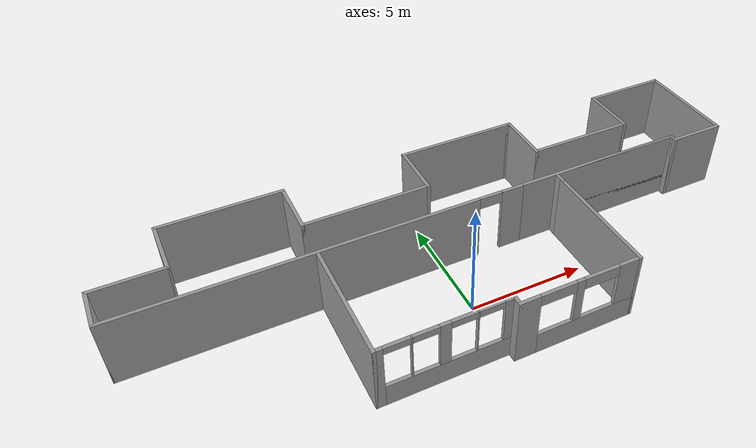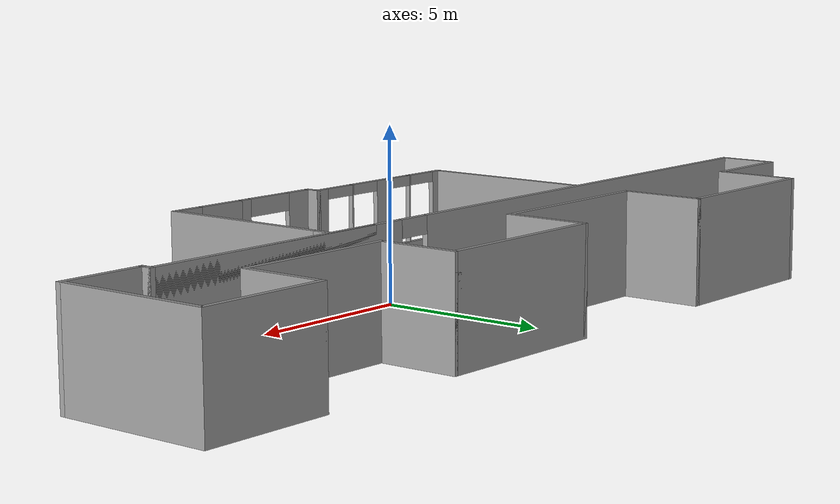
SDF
<?xml version='1.0'?>
<sdf version='1.6'>
  <model name='2ndfloor'>
    <pose frame=''>0.281 1.922 0 0 -0 0</pose>
    <link name='Wall_1'>
      <collision name='Wall_1_Collision'>
        <geometry>
          <box>
            <size>4.75 0.15 3</size>
          </box>
        </geometry>
        <pose frame=''>0 0 1.5 0 -0 0</pose>
      </collision>
      <visual name='Wall_1_Visual'>
        <pose frame=''>0 0 1.5 0 -0 0</pose>
        <geometry>
          <box>
            <size>4.75 0.15 3</size>
          </box>
        </geometry>
        <material>
          <script>
            <uri>file://media/materials/scripts/gazebo.material</uri>
            <name>Gazebo/Grey</name>
          </script>
          <ambient>1 1 1 1</ambient>
        </material>
        <meta>
          <layer>0</layer>
        </meta>
      </visual>
      <pose frame=''>7.45 2.472 0 0 -0 0</pose>
    </link>
    <link name='Wall_10'>
      <collision name='Wall_10_Collision'>
        <geometry>
          <box>
            <size>2.5 0.15 3</size>
          </box>
        </geometry>
        <pose frame=''>0 0 1.5 0 -0 0</pose>
      </collision>
      <visual name='Wall_10_Visual'>
        <pose frame=''>0 0 1.5 0 -0 0</pose>
        <geometry>
          <box>
            <size>2.5 0.15 3</size>
          </box>
        </geometry>
        <material>
          <script>
            <uri>file://media/materials/scripts/gazebo.material</uri>
            <name>Gazebo/Grey</name>
          </script>
          <ambient>1 1 1 1</ambient>
        </material>
        <meta>
          <layer>0</layer>
        </meta>
      </visual>
      <pose frame=''>-10.5 3.597 0 0 -0 1.5708</pose>
    </link>
    <link name='Wall_11'>
      <collision name='Wall_11_Collision'>
        <geometry>
          <box>
            <size>5.25 0.15 3</size>
          </box>
        </geometry>
        <pose frame=''>0 0 1.5 0 -0 0</pose>
      </collision>
      <visual name='Wall_11_Visual'>
        <pose frame=''>0 0 1.5 0 -0 0</pose>
        <geometry>
          <box>
            <size>5.25 0.15 3</size>
          </box>
        </geometry>
        <material>
          <script>
            <uri>file://media/materials/scripts/gazebo.material</uri>
            <name>Gazebo/Grey</name>
          </script>
          <ambient>1 1 1 1</ambient>
        </material>
        <meta>
          <layer>0</layer>
        </meta>
      </visual>
      <pose frame=''>-7.95 4.772 0 0 -0 0</pose>
    </link>
    <link name='Wall_12'>
      <collision name='Wall_12_Collision'>
        <geometry>
          <box>
            <size>2.5 0.15 3</size>
          </box>
        </geometry>
        <pose frame=''>0 0 1.5 0 -0 0</pose>
      </collision>
      <visual name='Wall_12_Visual'>
        <pose frame=''>0 0 1.5 0 -0 0</pose>
        <geometry>
          <box>
            <size>2.5 0.15 3</size>
          </box>
        </geometry>
        <material>
          <script>
            <uri>file://media/materials/scripts/gazebo.material</uri>
            <name>Gazebo/Grey</name>
          </script>
          <ambient>1 1 1 1</ambient>
        </material>
        <meta>
          <layer>0</layer>
        </meta>
      </visual>
      <pose frame=''>-5.4 3.597 0 0 -0 -1.5708</pose>
    </link>
    <link name='Wall_13'>
      <collision name='Wall_13_Collision'>
        <geometry>
          <box>
            <size>5.5 0.15 3</size>
          </box>
        </geometry>
        <pose frame=''>0 0 1.5 0 -0 0</pose>
      </collision>
      <visual name='Wall_13_Visual'>
        <pose frame=''>0 0 1.5 0 -0 0</pose>
        <geometry>
          <box>
            <size>5.5 0.15 3</size>
          </box>
        </geometry>
        <material>
          <script>
            <uri>file://media/materials/scripts/gazebo.material</uri>
            <name>Gazebo/Grey</name>
          </script>
          <ambient>1 1 1 1</ambient>
        </material>
        <meta>
          <layer>0</layer>
        </meta>
      </visual>
      <pose frame=''>-2.725 2.422 0 0 -0 0</pose>
    </link>
    <link name='Wall_14'>
      <collision name='Wall_14_Collision'>
        <geometry>
          <box>
            <size>2.5 0.15 3</size>
          </box>
        </geometry>
        <pose frame=''>0 0 1.5 0 -0 0</pose>
      </collision>
      <visual name='Wall_14_Visual'>
        <pose frame=''>0 0 1.5 0 -0 0</pose>
        <geometry>
          <box>
            <size>2.5 0.15 3</size>
          </box>
        </geometry>
        <material>
          <script>
            <uri>file://media/materials/scripts/gazebo.material</uri>
            <name>Gazebo/Grey</name>
          </script>
          <ambient>1 1 1 1</ambient>
        </material>
        <meta>
          <layer>0</layer>
        </meta>
      </visual>
      <pose frame=''>-0.05 3.597 0 0 -0 1.5708</pose>
    </link>
    <link name='Wall_15'>
      <collision name='Wall_15_Collision'>
        <geometry>
          <box>
            <size>5.25 0.15 3</size>
          </box>
        </geometry>
        <pose frame=''>0 0 1.5 0 -0 0</pose>
      </collision>
      <visual name='Wall_15_Visual'>
        <pose frame=''>0 0 1.5 0 -0 0</pose>
        <geometry>
          <box>
            <size>5.25 0.15 3</size>
          </box>
        </geometry>
        <material>
          <script>
            <uri>file://media/materials/scripts/gazebo.material</uri>
            <name>Gazebo/Grey</name>
          </script>
          <ambient>1 1 1 1</ambient>
        </material>
        <meta>
          <layer>0</layer>
        </meta>
      </visual>
      <pose frame=''>2.5 4.772 0 0 -0 0</pose>
    </link>
    <link name='Wall_16'>
      <collision name='Wall_16_Collision'>
        <geometry>
          <box>
            <size>0.25 0.15 2.5</size>
          </box>
        </geometry>
        <pose frame=''>0 0 1.25 0 -0 0</pose>
      </collision>
      <visual name='Wall_16_Visual'>
        <pose frame=''>0 0 1.25 0 -0 0</pose>
        <geometry>
          <box>
            <size>0.25 0.15 2.5</size>
          </box>
        </geometry>
        <material>
          <script>
            <uri>file://media/materials/scripts/gazebo.material</uri>
            <name>Gazebo/Grey</name>
          </script>
          <ambient>1 1 1 1</ambient>
        </material>
        <meta>
          <layer>0</layer>
        </meta>
      </visual>
      <pose frame=''>5.1 4.772 0 0 -0 0</pose>
    </link>
    <link name='Wall_17'>
      <collision name='Wall_17_Collision'>
        <geometry>
          <box>
            <size>2.45 0.15 3</size>
          </box>
        </geometry>
        <pose frame=''>0 0 1.5 0 -0 0</pose>
      </collision>
      <visual name='Wall_17_Visual'>
        <pose frame=''>0 0 1.5 0 -0 0</pose>
        <geometry>
          <box>
            <size>2.45 0.15 3</size>
          </box>
        </geometry>
        <material>
          <script>
            <uri>file://media/materials/scripts/gazebo.material</uri>
            <name>Gazebo/Grey</name>
          </script>
          <ambient>1 1 1 1</ambient>
        </material>
        <meta>
          <layer>0</layer>
        </meta>
      </visual>
      <pose frame=''>5.15 3.622 0 0 -0 -1.5708</pose>
    </link>
    <link name='Wall_2'>
      <collision name='Wall_2_Collision'>
        <geometry>
          <box>
            <size>2.5 0.15 3</size>
          </box>
        </geometry>
        <pose frame=''>0 0 1.5 0 -0 0</pose>
      </collision>
      <visual name='Wall_2_Visual'>
        <pose frame=''>0 0 1.5 0 -0 0</pose>
        <geometry>
          <box>
            <size>2.5 0.15 3</size>
          </box>
        </geometry>
        <material>
          <script>
            <uri>file://media/materials/scripts/gazebo.material</uri>
            <name>Gazebo/Grey</name>
          </script>
          <ambient>1 1 1 1</ambient>
        </material>
        <meta>
          <layer>0</layer>
        </meta>
      </visual>
      <pose frame=''>9.75 3.647 0 0 -0 1.5708</pose>
    </link>
    <link name='Wall_22'>
      <pose frame=''>-2.7415 -4.472 0 0 -0 0</pose>
      <visual name='Wall_22_Visual_0'>
        <pose frame=''>-2.54474 0 1.5 0 -0 0</pose>
        <geometry>
          <box>
            <size>0.397366 0.15 3</size>
          </box>
        </geometry>
        <material>
          <script>
            <uri>file://media/materials/scripts/gazebo.material</uri>
            <name>Gazebo/Grey</name>
          </script>
          <ambient>1 1 1 1</ambient>
        </material>
        <meta>
          <layer>0</layer>
        </meta>
      </visual>
      <collision name='Wall_22_Collision_0'>
        <geometry>
          <box>
            <size>0.397366 0.15 3</size>
          </box>
        </geometry>
        <pose frame=''>-2.54474 0 1.5 0 -0 0</pose>
      </collision>
      <visual name='Wall_22_Visual_1'>
        <pose frame=''>0.198683 0 0.5 0 -0 0</pose>
        <geometry>
          <box>
            <size>5.08948 0.15 1</size>
          </box>
        </geometry>
        <material>
          <script>
            <uri>file://media/materials/scripts/gazebo.material</uri>
            <name>Gazebo/Grey</name>
          </script>
          <ambient>1 1 1 1</ambient>
        </material>
        <meta>
          <layer>0</layer>
        </meta>
      </visual>
      <collision name='Wall_22_Collision_1'>
        <geometry>
          <box>
            <size>5.08948 0.15 1</size>
          </box>
        </geometry>
        <pose frame=''>0.198683 0 0.5 0 -0 0</pose>
      </collision>
      <visual name='Wall_22_Visual_2'>
        <pose frame=''>-1.2997 0 2 0 -0 0</pose>
        <geometry>
          <box>
            <size>0.052724 0.15 2</size>
          </box>
        </geometry>
        <material>
          <script>
            <uri>file://media/materials/scripts/gazebo.material</uri>
            <name>Gazebo/Grey</name>
          </script>
          <ambient>1 1 1 1</ambient>
        </material>
        <meta>
          <layer>0</layer>
        </meta>
      </visual>
      <collision name='Wall_22_Collision_2'>
        <geometry>
          <box>
            <size>0.052724 0.15 2</size>
          </box>
        </geometry>
        <pose frame=''>-1.2997 0 2 0 -0 0</pose>
      </collision>
      <visual name='Wall_22_Visual_3'>
        <pose frame=''>-0.037497 0 2 0 -0 0</pose>
        <geometry>
          <box>
            <size>0.431675 0.15 2</size>
          </box>
        </geometry>
        <material>
          <script>
            <uri>file://media/materials/scripts/gazebo.material</uri>
            <name>Gazebo/Grey</name>
          </script>
          <ambient>1 1 1 1</ambient>
        </material>
        <meta>
          <layer>0</layer>
        </meta>
      </visual>
      <collision name='Wall_22_Collision_3'>
        <geometry>
          <box>
            <size>0.431675 0.15 2</size>
          </box>
        </geometry>
        <pose frame=''>-0.037497 0 2 0 -0 0</pose>
      </collision>
      <visual name='Wall_22_Visual_4'>
        <pose frame=''>1.22519 0 2 0 -0 0</pose>
        <geometry>
          <box>
            <size>0.053703 0.15 2</size>
          </box>
        </geometry>
        <material>
          <script>
            <uri>file://media/materials/scripts/gazebo.material</uri>
            <name>Gazebo/Grey</name>
          </script>
          <ambient>1 1 1 1</ambient>
        </material>
        <meta>
          <layer>0</layer>
        </meta>
      </visual>
      <collision name='Wall_22_Collision_4'>
        <geometry>
          <box>
            <size>0.053703 0.15 2</size>
          </box>
        </geometry>
        <pose frame=''>1.22519 0 2 0 -0 0</pose>
      </collision>
      <visual name='Wall_22_Visual_5'>
        <pose frame=''>2.50773 0 2 0 -0 0</pose>
        <geometry>
          <box>
            <size>0.471381 0.15 2</size>
          </box>
        </geometry>
        <material>
          <script>
            <uri>file://media/materials/scripts/gazebo.material</uri>
            <name>Gazebo/Grey</name>
          </script>
          <ambient>1 1 1 1</ambient>
        </material>
        <meta>
          <layer>0</layer>
        </meta>
      </visual>
      <collision name='Wall_22_Collision_5'>
        <geometry>
          <box>
            <size>0.471381 0.15 2</size>
          </box>
        </geometry>
        <pose frame=''>2.50773 0 2 0 -0 0</pose>
      </collision>
      <visual name='Wall_22_Visual_6'>
        <pose frame=''>-1.83606 0 2.85 0 -0 0</pose>
        <geometry>
          <box>
            <size>1.02 0.15 0.3</size>
          </box>
        </geometry>
        <material>
          <script>
            <uri>file://media/materials/scripts/gazebo.material</uri>
            <name>Gazebo/Grey</name>
          </script>
          <ambient>1 1 1 1</ambient>
        </material>
        <meta>
          <layer>0</layer>
        </meta>
      </visual>
      <collision name='Wall_22_Collision_6'>
        <geometry>
          <box>
            <size>1.02 0.15 0.3</size>
          </box>
        </geometry>
        <pose frame=''>-1.83606 0 2.85 0 -0 0</pose>
      </collision>
      <visual name='Wall_22_Visual_7'>
        <pose frame=''>-0.763334 0 2.85 0 -0 0</pose>
        <geometry>
          <box>
            <size>1.02 0.15 0.3</size>
          </box>
        </geometry>
        <material>
          <script>
            <uri>file://media/materials/scripts/gazebo.material</uri>
            <name>Gazebo/Grey</name>
          </script>
          <ambient>1 1 1 1</ambient>
        </material>
        <meta>
          <layer>0</layer>
        </meta>
      </visual>
      <collision name='Wall_22_Collision_7'>
        <geometry>
          <box>
            <size>1.02 0.15 0.3</size>
          </box>
        </geometry>
        <pose frame=''>-0.763334 0 2.85 0 -0 0</pose>
      </collision>
      <visual name='Wall_22_Visual_8'>
        <pose frame=''>0.688341 0 2.85 0 -0 0</pose>
        <geometry>
          <box>
            <size>1.02 0.15 0.3</size>
          </box>
        </geometry>
        <material>
          <script>
            <uri>file://media/materials/scripts/gazebo.material</uri>
            <name>Gazebo/Grey</name>
          </script>
          <ambient>1 1 1 1</ambient>
        </material>
        <meta>
          <layer>0</layer>
        </meta>
      </visual>
      <collision name='Wall_22_Collision_8'>
        <geometry>
          <box>
            <size>1.02 0.15 0.3</size>
          </box>
        </geometry>
        <pose frame=''>0.688341 0 2.85 0 -0 0</pose>
      </collision>
      <visual name='Wall_22_Visual_9'>
        <pose frame=''>1.76204 0 2.85 0 -0 0</pose>
        <geometry>
          <box>
            <size>1.02 0.15 0.3</size>
          </box>
        </geometry>
        <material>
          <script>
            <uri>file://media/materials/scripts/gazebo.material</uri>
            <name>Gazebo/Grey</name>
          </script>
          <ambient>1 1 1 1</ambient>
        </material>
        <meta>
          <layer>0</layer>
        </meta>
      </visual>
      <collision name='Wall_22_Collision_9'>
        <geometry>
          <box>
            <size>1.02 0.15 0.3</size>
          </box>
        </geometry>
        <pose frame=''>1.76204 0 2.85 0 -0 0</pose>
      </collision>
    </link>
    <link name='Wall_23'>
      <collision name='Wall_23_Collision'>
        <geometry>
          <box>
            <size>0.5 0.15 3</size>
          </box>
        </geometry>
        <pose frame=''>0 0 1.5 0 -0 0</pose>
      </collision>
      <visual name='Wall_23_Visual'>
        <pose frame=''>0 0 1.5 0 -0 0</pose>
        <geometry>
          <box>
            <size>0.5 0.15 3</size>
          </box>
        </geometry>
        <material>
          <script>
            <uri>file://media/materials/scripts/gazebo.material</uri>
            <name>Gazebo/Grey</name>
          </script>
          <ambient>1 1 1 1</ambient>
        </material>
        <meta>
          <layer>0</layer>
        </meta>
      </visual>
      <pose frame=''>-0.073 -4.647 0 0 -0 -1.5708</pose>
    </link>
    <link name='Wall_3'>
      <collision name='Wall_3_Collision'>
        <geometry>
          <box>
            <size>3.75 0.15 3</size>
          </box>
        </geometry>
        <pose frame=''>0 0 1.5 0 -0 0</pose>
      </collision>
      <visual name='Wall_3_Visual'>
        <pose frame=''>0 0 1.5 0 -0 0</pose>
        <geometry>
          <box>
            <size>3.75 0.15 3</size>
          </box>
        </geometry>
        <material>
          <script>
            <uri>file://media/materials/scripts/gazebo.material</uri>
            <name>Gazebo/Grey</name>
          </script>
          <ambient>1 1 1 1</ambient>
        </material>
        <meta>
          <layer>0</layer>
        </meta>
      </visual>
      <pose frame=''>11.55 4.822 0 0 -0 0</pose>
    </link>
    <link name='Wall_30'>
      <collision name='Wall_30_Collision'>
        <geometry>
          <box>
            <size>0.423201 0.15 3</size>
          </box>
        </geometry>
        <pose frame=''>0 0 1.5 0 -0 0</pose>
      </collision>
      <visual name='Wall_30_Visual'>
        <pose frame=''>0 0 1.5 0 -0 0</pose>
        <geometry>
          <box>
            <size>0.423201 0.15 3</size>
          </box>
        </geometry>
        <material>
          <script>
            <uri>file://media/materials/scripts/gazebo.material</uri>
            <name>Gazebo/Grey</name>
          </script>
          <ambient>1 1 1 1</ambient>
        </material>
        <meta>
          <layer>0</layer>
        </meta>
      </visual>
      <pose frame=''>11 0.6085 0 0 -0 -1.5708</pose>
    </link>
    <link name='Wall_36'>
      <pose frame=''>2.477 -4.822 0 0 -0 0</pose>
      <visual name='Wall_36_Visual_0'>
        <pose frame=''>-2.16711 0 1.5 0 -0 0</pose>
        <geometry>
          <box>
            <size>0.915771 0.15 3</size>
          </box>
        </geometry>
        <material>
          <script>
            <uri>file://media/materials/scripts/gazebo.material</uri>
            <name>Gazebo/Grey</name>
          </script>
          <ambient>1 1 1 1</ambient>
        </material>
        <meta>
          <layer>0</layer>
        </meta>
      </visual>
      <collision name='Wall_36_Collision_0'>
        <geometry>
          <box>
            <size>0.915771 0.15 3</size>
          </box>
        </geometry>
        <pose frame=''>-2.16711 0 1.5 0 -0 0</pose>
      </collision>
      <visual name='Wall_36_Visual_1'>
        <pose frame=''>0.457886 0 0.5 0 -0 0</pose>
        <geometry>
          <box>
            <size>4.33423 0.15 1</size>
          </box>
        </geometry>
        <material>
          <script>
            <uri>file://media/materials/scripts/gazebo.material</uri>
            <name>Gazebo/Grey</name>
          </script>
          <ambient>1 1 1 1</ambient>
        </material>
        <meta>
          <layer>0</layer>
        </meta>
      </visual>
      <collision name='Wall_36_Collision_1'>
        <geometry>
          <box>
            <size>4.33423 0.15 1</size>
          </box>
        </geometry>
        <pose frame=''>0.457886 0 0.5 0 -0 0</pose>
      </collision>
      <visual name='Wall_36_Visual_2'>
        <pose frame=''>-0.039099 0 2 0 -0 0</pose>
        <geometry>
          <box>
            <size>0.340259 0.15 2</size>
          </box>
        </geometry>
        <material>
          <script>
            <uri>file://media/materials/scripts/gazebo.material</uri>
            <name>Gazebo/Grey</name>
          </script>
          <ambient>1 1 1 1</ambient>
        </material>
        <meta>
          <layer>0</layer>
        </meta>
      </visual>
      <collision name='Wall_36_Collision_2'>
        <geometry>
          <box>
            <size>0.340259 0.15 2</size>
          </box>
        </geometry>
        <pose frame=''>-0.039099 0 2 0 -0 0</pose>
      </collision>
      <visual name='Wall_36_Visual_3'>
        <pose frame=''>2.12801 0 2 0 -0 0</pose>
        <geometry>
          <box>
            <size>0.99397 0.15 2</size>
          </box>
        </geometry>
        <material>
          <script>
            <uri>file://media/materials/scripts/gazebo.material</uri>
            <name>Gazebo/Grey</name>
          </script>
          <ambient>1 1 1 1</ambient>
        </material>
        <meta>
          <layer>0</layer>
        </meta>
      </visual>
      <collision name='Wall_36_Collision_3'>
        <geometry>
          <box>
            <size>0.99397 0.15 2</size>
          </box>
        </geometry>
        <pose frame=''>2.12801 0 2 0 -0 0</pose>
      </collision>
      <visual name='Wall_36_Visual_4'>
        <pose frame=''>-0.959229 0 2.75 0 -0 0</pose>
        <geometry>
          <box>
            <size>1.5 0.15 0.5</size>
          </box>
        </geometry>
        <material>
          <script>
            <uri>file://media/materials/scripts/gazebo.material</uri>
            <name>Gazebo/Grey</name>
          </script>
          <ambient>1 1 1 1</ambient>
        </material>
        <meta>
          <layer>0</layer>
        </meta>
      </visual>
      <collision name='Wall_36_Collision_4'>
        <geometry>
          <box>
            <size>1.5 0.15 0.5</size>
          </box>
        </geometry>
        <pose frame=''>-0.959229 0 2.75 0 -0 0</pose>
      </collision>
      <visual name='Wall_36_Visual_5'>
        <pose frame=''>0.88103 0 2.75 0 -0 0</pose>
        <geometry>
          <box>
            <size>1.5 0.15 0.5</size>
          </box>
        </geometry>
        <material>
          <script>
            <uri>file://media/materials/scripts/gazebo.material</uri>
            <name>Gazebo/Grey</name>
          </script>
          <ambient>1 1 1 1</ambient>
        </material>
        <meta>
          <layer>0</layer>
        </meta>
      </visual>
      <collision name='Wall_36_Collision_5'>
        <geometry>
          <box>
            <size>1.5 0.15 0.5</size>
          </box>
        </geometry>
        <pose frame=''>0.88103 0 2.75 0 -0 0</pose>
      </collision>
    </link>
    <link name='Wall_4'>
      <collision name='Wall_4_Collision'>
        <geometry>
          <box>
            <size>4.5 0.15 3</size>
          </box>
        </geometry>
        <pose frame=''>0 0 1.5 0 -0 0</pose>
      </collision>
      <visual name='Wall_4_Visual'>
        <pose frame=''>0 0 1.5 0 -0 0</pose>
        <geometry>
          <box>
            <size>4.5 0.15 3</size>
          </box>
        </geometry>
        <material>
          <script>
            <uri>file://media/materials/scripts/gazebo.material</uri>
            <name>Gazebo/Grey</name>
          </script>
          <ambient>1 1 1 1</ambient>
        </material>
        <meta>
          <layer>0</layer>
        </meta>
      </visual>
      <pose frame=''>13.35 2.647 0 0 -0 -1.5708</pose>
    </link>
    <link name='Wall_42'>
      <collision name='Wall_42_Collision'>
        <geometry>
          <box>
            <size>1.75 0.15 3</size>
          </box>
        </geometry>
        <pose frame=''>0 0 1.5 0 -0 0</pose>
      </collision>
      <visual name='Wall_42_Visual'>
        <pose frame=''>0 0 1.5 0 -0 0</pose>
        <geometry>
          <box>
            <size>1.75 0.15 3</size>
          </box>
        </geometry>
        <material>
          <script>
            <uri>file://media/materials/scripts/gazebo.material</uri>
            <name>Gazebo/Grey</name>
          </script>
          <ambient>1 1 1 1</ambient>
        </material>
        <meta>
          <layer>0</layer>
        </meta>
      </visual>
      <pose frame=''>-13.35 1.622 0 0 -0 -1.5708</pose>
    </link>
    <link name='Wall_43'>
      <collision name='Wall_43_Collision'>
        <geometry>
          <box>
            <size>0.227 0.15 2.5</size>
          </box>
        </geometry>
        <pose frame=''>0 0 1.25 0 -0 0</pose>
      </collision>
      <visual name='Wall_43_Visual'>
        <pose frame=''>0 0 1.25 0 -0 0</pose>
        <geometry>
          <box>
            <size>0.227 0.15 2.5</size>
          </box>
        </geometry>
        <material>
          <script>
            <uri>file://media/materials/scripts/gazebo.material</uri>
            <name>Gazebo/Grey</name>
          </script>
          <ambient>1 1 1 1</ambient>
        </material>
        <meta>
          <layer>0</layer>
        </meta>
      </visual>
      <pose frame=''>-13.35 0.7835 0 0 -0 -1.5708</pose>
    </link>
    <link name='Wall_44'>
      <pose frame=''>-1.175 0.745 0 0 -0 0</pose>
      <visual name='Wall_44_Visual_0'>
        <pose frame=''>-4.8282 0 1.5 0 -0 0</pose>
        <geometry>
          <box>
            <size>14.8436 0.15 3</size>
          </box>
        </geometry>
        <material>
          <script>
            <uri>file://media/materials/scripts/gazebo.material</uri>
            <name>Gazebo/Grey</name>
          </script>
          <ambient>1 1 1 1</ambient>
        </material>
        <meta>
          <layer>0</layer>
        </meta>
      </visual>
      <collision name='Wall_44_Collision_0'>
        <geometry>
          <box>
            <size>14.8436 0.15 3</size>
          </box>
        </geometry>
        <pose frame=''>-4.8282 0 1.5 0 -0 0</pose>
      </collision>
      <visual name='Wall_44_Visual_1'>
        <pose frame=''>7.9218 0 1.5 0 -0 0</pose>
        <geometry>
          <box>
            <size>8.65639 0.15 3</size>
          </box>
        </geometry>
        <material>
          <script>
            <uri>file://media/materials/scripts/gazebo.material</uri>
            <name>Gazebo/Grey</name>
          </script>
          <ambient>1 1 1 1</ambient>
        </material>
        <meta>
          <layer>0</layer>
        </meta>
      </visual>
      <collision name='Wall_44_Collision_1'>
        <geometry>
          <box>
            <size>8.65639 0.15 3</size>
          </box>
        </geometry>
        <pose frame=''>7.9218 0 1.5 0 -0 0</pose>
      </collision>
      <visual name='Wall_44_Visual_2'>
        <pose frame=''>8.42014 0 1.5 0 -0 0</pose>
        <geometry>
          <box>
            <size>7.65972 0.15 3</size>
          </box>
        </geometry>
        <material>
          <script>
            <uri>file://media/materials/scripts/gazebo.material</uri>
            <name>Gazebo/Grey</name>
          </script>
          <ambient>1 1 1 1</ambient>
        </material>
        <meta>
          <layer>0</layer>
        </meta>
      </visual>
      <collision name='Wall_44_Collision_2'>
        <geometry>
          <box>
            <size>7.65972 0.15 3</size>
          </box>
        </geometry>
        <pose frame=''>8.42014 0 1.5 0 -0 0</pose>
      </collision>
      <visual name='Wall_44_Visual_3'>
        <pose frame=''>3.09194 0 2.75 0 -0 0</pose>
        <geometry>
          <box>
            <size>0.996667 0.15 0.5</size>
          </box>
        </geometry>
        <material>
          <script>
            <uri>file://media/materials/scripts/gazebo.material</uri>
            <name>Gazebo/Grey</name>
          </script>
          <ambient>1 1 1 1</ambient>
        </material>
        <meta>
          <layer>0</layer>
        </meta>
      </visual>
      <collision name='Wall_44_Collision_3'>
        <geometry>
          <box>
            <size>0.996667 0.15 0.5</size>
          </box>
        </geometry>
        <pose frame=''>3.09194 0 2.75 0 -0 0</pose>
      </collision>
    </link>
    <link name='Wall_46'>
      <collision name='Wall_46_Collision'>
        <geometry>
          <box>
            <size>5.25 0.15 3</size>
          </box>
        </geometry>
        <pose frame=''>0 0 1.5 0 -0 0</pose>
      </collision>
      <visual name='Wall_46_Visual'>
        <pose frame=''>0 0 1.5 0 -0 0</pose>
        <geometry>
          <box>
            <size>5.25 0.15 3</size>
          </box>
        </geometry>
        <material>
          <script>
            <uri>file://media/materials/scripts/gazebo.material</uri>
            <name>Gazebo/Grey</name>
          </script>
          <ambient>1 1 1 1</ambient>
        </material>
        <meta>
          <layer>0</layer>
        </meta>
      </visual>
      <pose frame=''>-5.41 -1.922 0 0 -0 1.5708</pose>
    </link>
    <link name='Wall_49'>
      <collision name='Wall_49_Collision'>
        <geometry>
          <box>
            <size>5.25 0.15 3</size>
          </box>
        </geometry>
        <pose frame=''>0 0 1.5 0 -0 0</pose>
      </collision>
      <visual name='Wall_49_Visual'>
        <pose frame=''>0 0 1.5 0 -0 0</pose>
        <geometry>
          <box>
            <size>5.25 0.15 3</size>
          </box>
        </geometry>
        <material>
          <script>
            <uri>file://media/materials/scripts/gazebo.material</uri>
            <name>Gazebo/Grey</name>
          </script>
          <ambient>1 1 1 1</ambient>
        </material>
        <meta>
          <layer>0</layer>
        </meta>
      </visual>
      <pose frame=''>5.027 -2.272 0 0 -0 1.5708</pose>
    </link>
    <link name='Wall_5'>
      <collision name='Wall_5_Collision'>
        <geometry>
          <box>
            <size>2.5 0.15 3</size>
          </box>
        </geometry>
        <pose frame=''>0 0 1.5 0 -0 0</pose>
      </collision>
      <visual name='Wall_5_Visual'>
        <pose frame=''>0 0 1.5 0 -0 0</pose>
        <geometry>
          <box>
            <size>2.5 0.15 3</size>
          </box>
        </geometry>
        <material>
          <script>
            <uri>file://media/materials/scripts/gazebo.material</uri>
            <name>Gazebo/Grey</name>
          </script>
          <ambient>1 1 1 1</ambient>
        </material>
        <meta>
          <layer>0</layer>
        </meta>
      </visual>
      <pose frame=''>12.175 0.472 0 0 -0 3.14159</pose>
    </link>
    <link name='Wall_51'>
      <collision name='Wall_51_Collision'>
        <geometry>
          <box>
            <size>0.5 0.15 3</size>
          </box>
        </geometry>
        <pose frame=''>0 0 1.5 0 -0 0</pose>
      </collision>
      <visual name='Wall_51_Visual'>
        <pose frame=''>0 0 1.5 0 -0 0</pose>
        <geometry>
          <box>
            <size>0.5 0.15 3</size>
          </box>
        </geometry>
        <material>
          <script>
            <uri>file://media/materials/scripts/gazebo.material</uri>
            <name>Gazebo/Grey</name>
          </script>
          <ambient>1 1 1 1</ambient>
        </material>
        <meta>
          <layer>0</layer>
        </meta>
      </visual>
      <pose frame=''>5.027 0.453 0 0 -0 1.5708</pose>
    </link>
    <link name='Wall_9'>
      <collision name='Wall_9_Collision'>
        <geometry>
          <box>
            <size>3 0.15 3</size>
          </box>
        </geometry>
        <pose frame=''>0 0 1.5 0 -0 0</pose>
      </collision>
      <visual name='Wall_9_Visual'>
        <pose frame=''>0 0 1.5 0 -0 0</pose>
        <geometry>
          <box>
            <size>3 0.15 3</size>
          </box>
        </geometry>
        <material>
          <script>
            <uri>file://media/materials/scripts/gazebo.material</uri>
            <name>Gazebo/Grey</name>
          </script>
          <ambient>1 1 1 1</ambient>
        </material>
        <meta>
          <layer>0</layer>
        </meta>
      </visual>
      <pose frame=''>-11.925 2.422 0 0 -0 0</pose>
    </link>
    <static>1</static>
  </model>
</sdf>
